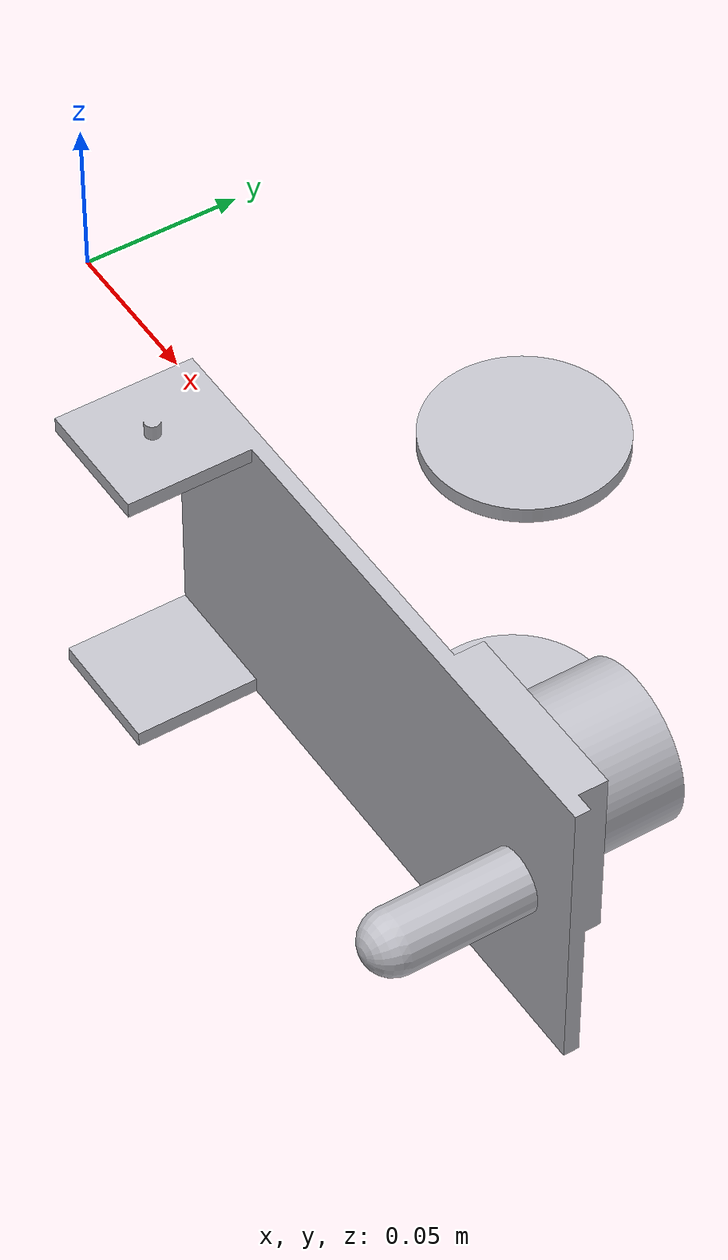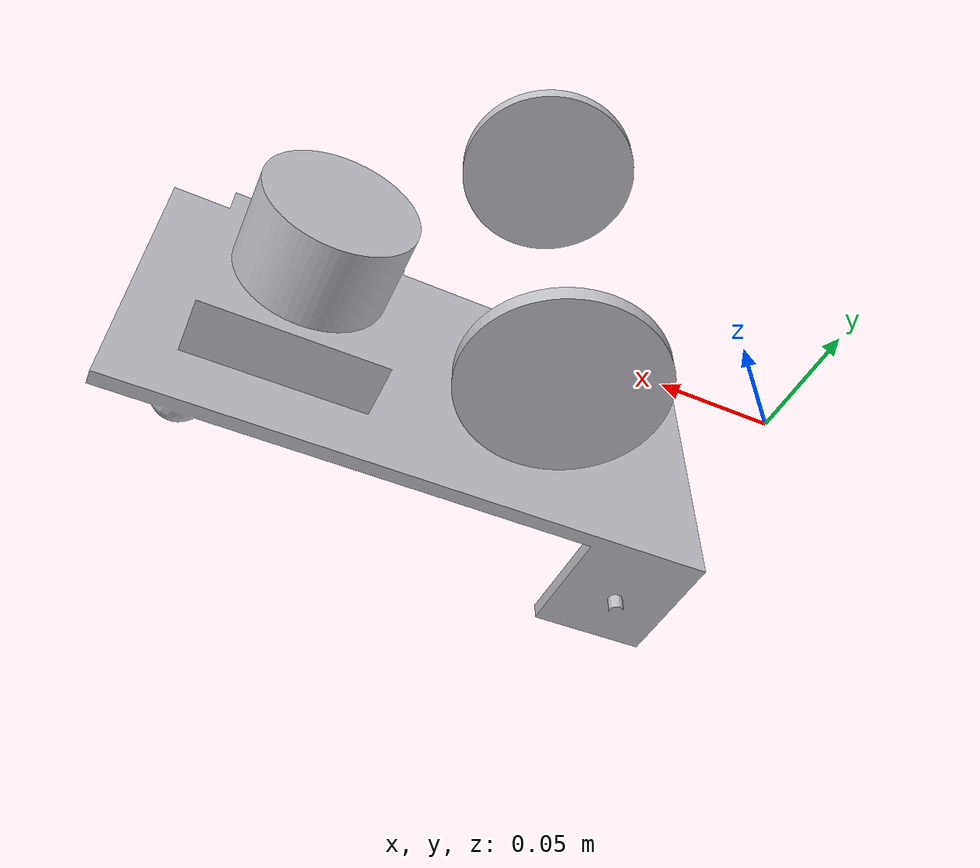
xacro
<?xml version="1.0" ?>
<robot name="task" xmlns:xacro="http://www.ros.org/wiki/xacro">

<xacro:include filename="$(find task_description)/urdf/materials.xacro" />
<xacro:include filename="$(find task_description)/urdf/task.trans" />
<xacro:include filename="$(find task_description)/urdf/task.gazebo" />
<link name="base_link">
  <inertial>
    <origin xyz="0.16677954190161126 0.0032688812040141 -0.05000000000000005" rpy="0 0 0"/>
    <mass value="1.59242835477218"/>
    <inertia ixx="0.001402" iyy="0.006346" izz="0.005519" ixy="-0.000338" iyz="-0.0" ixz="0.0"/>
  </inertial>
  <visual>
    <origin xyz="0 0 0" rpy="0 0 0"/>
    <geometry>
      <mesh filename="package://task_description/meshes/base_link.stl" scale="0.001 0.001 0.001"/>
    </geometry>
    <material name="silver"/>
  </visual>
  <collision>
    <origin xyz="0 0 0" rpy="0 0 0"/>
    <geometry>
      <mesh filename="package://task_description/meshes/base_link.stl" scale="0.001 0.001 0.001"/>
    </geometry>
  </collision>
</link>

<link name="rightwheel_1">
  <inertial>
    <origin xyz="2.7755575615628914e-17 -6.938893903907228e-18 -0.0025000000000000022" rpy="0 0 0"/>
    <mass value="0.1109767604880594"/>
    <inertia ixx="2.5e-05" iyy="2.5e-05" izz="5e-05" ixy="-0.0" iyz="-0.0" ixz="0.0"/>
  </inertial>
  <visual>
    <origin xyz="-0.07 0.02 0.105" rpy="0 0 0"/>
    <geometry>
      <mesh filename="package://task_description/meshes/rightwheel_1.stl" scale="0.001 0.001 0.001"/>
    </geometry>
    <material name="silver"/>
  </visual>
  <collision>
    <origin xyz="-0.07 0.02 0.105" rpy="0 0 0"/>
    <geometry>
      <mesh filename="package://task_description/meshes/rightwheel_1.stl" scale="0.001 0.001 0.001"/>
    </geometry>
  </collision>
</link>

<link name="leftwheel_1">
  <inertial>
    <origin xyz="1.3877787807814457e-17 -6.938893903907228e-18 0.0025000000000000014" rpy="0 0 0"/>
    <mass value="0.1109767604880594"/>
    <inertia ixx="2.5e-05" iyy="2.5e-05" izz="5e-05" ixy="-0.0" iyz="0.0" ixz="0.0"/>
  </inertial>
  <visual>
    <origin xyz="-0.07 0.02 -0.005" rpy="0 0 0"/>
    <geometry>
      <mesh filename="package://task_description/meshes/leftwheel_1.stl" scale="0.001 0.001 0.001"/>
    </geometry>
    <material name="silver"/>
  </visual>
  <collision>
    <origin xyz="-0.07 0.02 -0.005" rpy="0 0 0"/>
    <geometry>
      <mesh filename="package://task_description/meshes/leftwheel_1.stl" scale="0.001 0.001 0.001"/>
    </geometry>
  </collision>
</link>

<link name="lidar_1">
  <inertial>
    <origin xyz="2.7755575615628914e-17 0.015 1.3877787807814457e-17" rpy="0 0 0"/>
    <mass value="0.46240316870024745"/>
    <inertia ixx="0.000107" iyy="0.000145" izz="0.000107" ixy="0.0" iyz="-0.0" ixz="-0.0"/>
  </inertial>
  <visual>
    <origin xyz="-0.2 -0.025 0.05" rpy="0 0 0"/>
    <geometry>
      <mesh filename="package://task_description/meshes/lidar_1.stl" scale="0.001 0.001 0.001"/>
    </geometry>
    <material name="silver"/>
  </visual>
  <collision>
    <origin xyz="-0.2 -0.025 0.05" rpy="0 0 0"/>
    <geometry>
      <mesh filename="package://task_description/meshes/lidar_1.stl" scale="0.001 0.001 0.001"/>
    </geometry>
  </collision>
</link>

<joint name="Rev1" type="continuous">
  <origin xyz="0.07 -0.02 -0.105" rpy="0 0 0"/>
  <parent link="base_link"/>
  <child link="rightwheel_1"/>
  <axis xyz="0.0 0.0 1.0"/>
</joint>

<joint name="Rev2" type="continuous">
  <origin xyz="0.07 -0.02 0.005" rpy="0 0 0"/>
  <parent link="base_link"/>
  <child link="leftwheel_1"/>
  <axis xyz="0.0 0.0 1.0"/>
</joint>

<joint name="Rev3" type="continuous">
  <origin xyz="0.2 0.025 -0.05" rpy="0 0 0"/>
  <parent link="base_link"/>
  <child link="lidar_1"/>
  <axis xyz="0.0 1.0 0.0"/>
</joint>

</robot>

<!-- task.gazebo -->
<robot name="task" xmlns:xacro="http://www.ros.org/wiki/xacro" >

<xacro:property name="body_color" value="Gazebo/Silver" />

<gazebo>
  <plugin name="control" filename="libgazebo_ros_control.so"/>
</gazebo>
<gazebo reference="base_link">
  <material>${body_color}</material>
  <mu1>0.2</mu1>
  <mu2>0.2</mu2>
  <selfCollide>true</selfCollide>
  <gravity>true</gravity>
</gazebo>

<gazebo reference="rightwheel_1">
  <material>${body_color}</material>
  <mu1>3500</mu1>
  <mu2>3500</mu2>
  <selfCollide>true</selfCollide>
</gazebo>

<gazebo reference="leftwheel_1">
  <material>${body_color}</material>
  <mu1>3500</mu1>
  <mu2>3500</mu2>
  <selfCollide>true</selfCollide>
</gazebo>

<gazebo reference="lidar_1">
  <material>${body_color}</material>
  <mu1>0.2</mu1>
  <mu2>0.2</mu2>
  <selfCollide>true</selfCollide>
</gazebo>
<gazebo>
  <plugin name="differential_drive_controller" filename="libgazebo_ros_diff_drive.so">

    <!-- Plugin update rate in Hz -->
    <updateRate>${1000}</updateRate>

    <!-- Name of left joint, defaults to `left_joint` -->
    <leftJoint>Rev2</leftJoint>

    <!-- Name of right joint, defaults to `right_joint` -->
    <rightJoint>Rev1</rightJoint>

    <!-- The distance from the center of one wheel to the other, in meters, defaults to 0.34 m -->
    <wheelSeparation>0.5380</wheelSeparation>

    <!-- Diameter of the wheels, in meters, defaults to 0.15 m -->
    <wheelDiameter>0.2410</wheelDiameter>

    <!-- Wheel acceleration, in rad/s^2, defaults to 0.0 rad/s^2 -->
    <wheelAcceleration>1.0</wheelAcceleration>

    <!-- Maximum torque which the wheels can produce, in Nm, defaults to 5 Nm -->
    <wheelTorque>20</wheelTorque>

    <!-- Topic to receive geometry_msgs/Twist message commands, defaults to `cmd_vel` -->
    <commandTopic>cmd_vel</commandTopic>

    <!-- Topic to publish nav_msgs/Odometry messages, defaults to `odom` -->
    <odometryTopic>odom</odometryTopic>

    <!-- Odometry frame, defaults to `odom` -->
    <odometryFrame>odom</odometryFrame>

    <!-- Robot frame to calculate odometry from, defaults to `base_footprint` -->
    <robotBaseFrame>base_link</robotBaseFrame>

    <!-- Odometry source, 0 for ENCODER, 1 for WORLD, defaults to WORLD -->
    <odometrySource>1</odometrySource>

    <!-- Set to true to publish transforms for the wheel links, defaults to false -->
    <publishWheelTF>true</publishWheelTF>

    <!-- Set to true to publish transforms for the odometry, defaults to true -->
    <publishOdom>true</publishOdom>

    <!-- Set to true to publish sensor_msgs/JointState on /joint_states for the wheel joints, defaults to false -->
    <publishWheelJointState>true</publishWheelJointState>

    <!-- Set to true to swap right and left wheels, defaults to true -->
    <legacyMode>false</legacyMode>
  </plugin>
</gazebo>
</robot>
